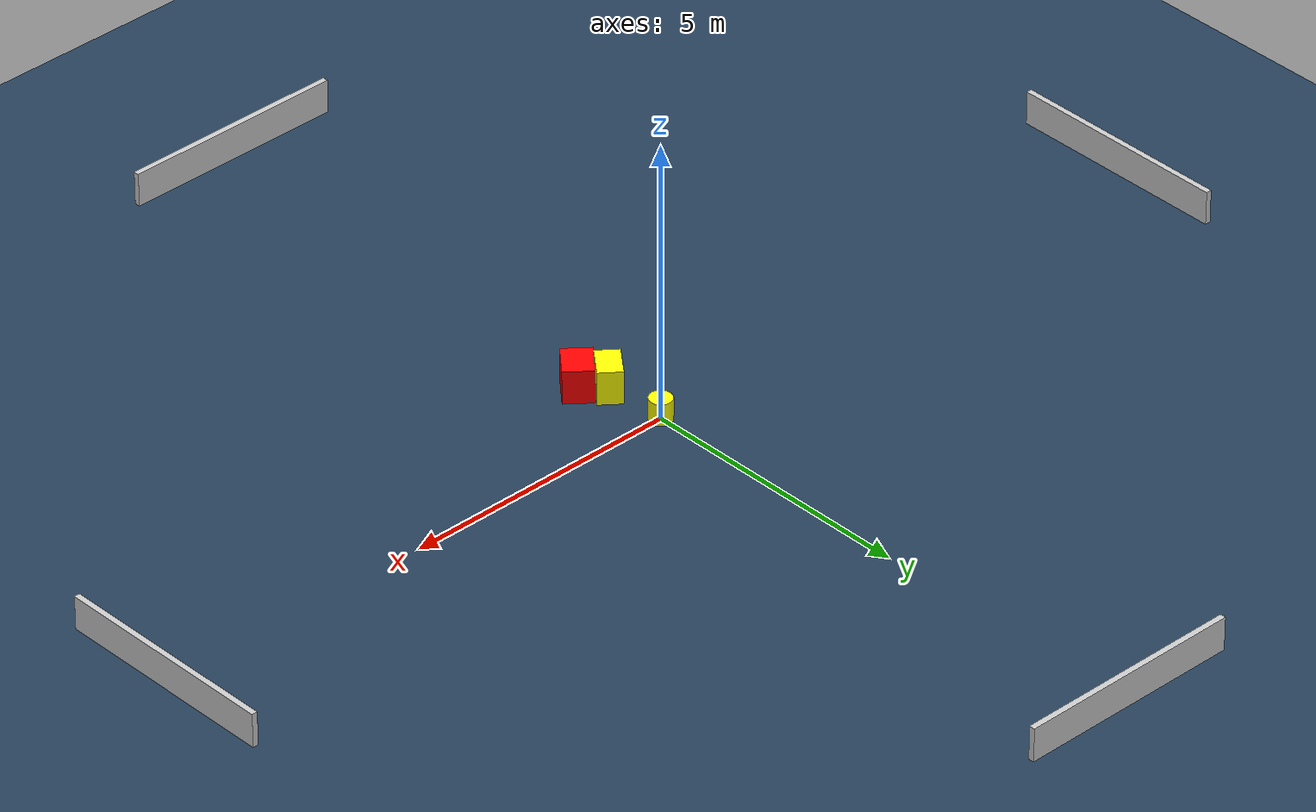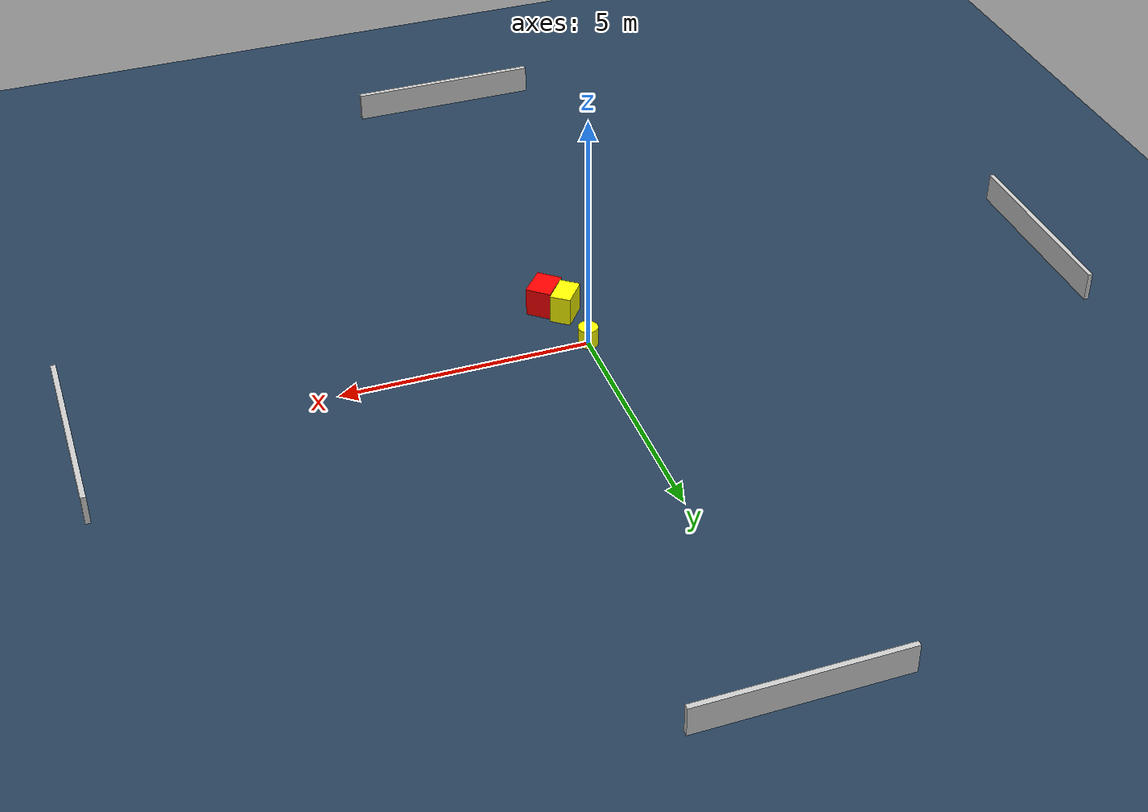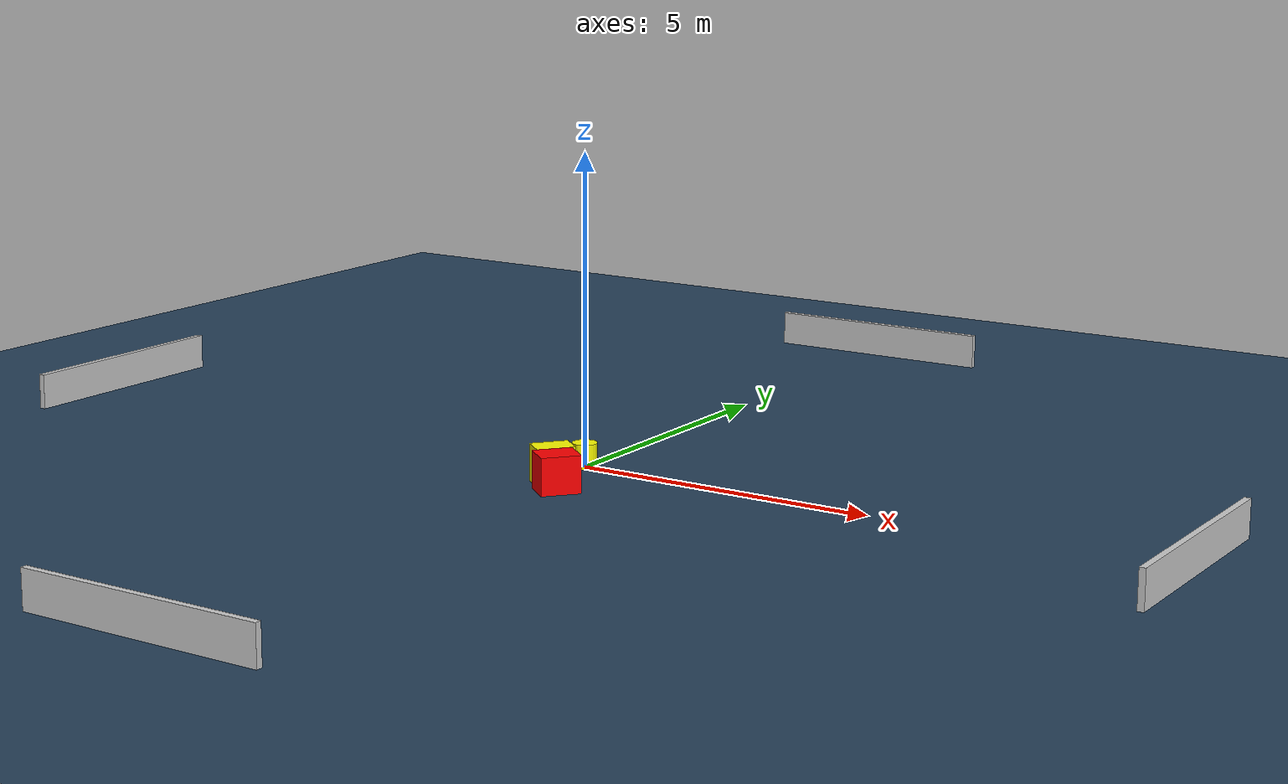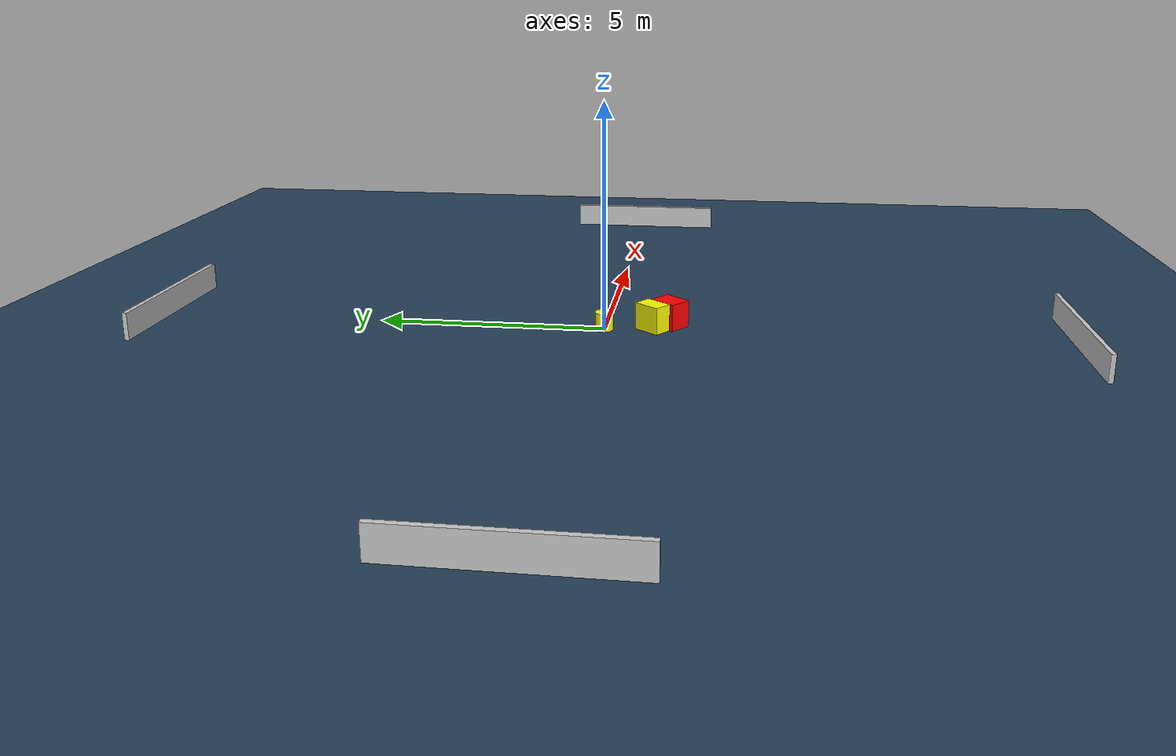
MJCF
<?xml version="1.0" ?>
<mujoco model="generated_environment">
  <option timestep="0.01" integrator="RK4" cone="elliptic"/>
  <default>
    <geom density="1"/>
  </default>
  <asset>
    <texture builtin="gradient" height="3072" name="skybox" rgb1="0.3 0.5 0.7" rgb2="0 0 0" type="skybox" width="512"/>
    <texture builtin="checker" height="300" name="groundplane" rgb1="0.2 0.3 0.4" rgb2="0.1 0.2 0.3" type="2d" width="300"/>
    <material name="groundplane" reflectance="0.2" texrepeat="5 5" texture="groundplane"/>
  </asset>
  <worldbody>
    <light dir="0 0 -1" directional="true" pos="0 0 1.5"/>
    <geom condim="3" friction="0.5 0.005 0.001" material="groundplane" name="floor" pos="0 0 0" size="0 0 0.05" type="plane"/>
    <body name="walls">
      <geom name="wall_1" condim="4" pos="-10.0 0.0 0.3" rgba="0.800000011920929 0.800000011920929 0.800000011920929 1.0" size="0.05 2.0 0.3" type="box"/>
      <geom name="wall_2" condim="4" pos="10.0 0.0 0.3" rgba="0.800000011920929 0.800000011920929 0.800000011920929 1.0" size="0.05 2.0 0.3" type="box"/>
      <geom name="wall_3" condim="4" pos="0.0 -10.0 0.3" rgba="0.800000011920929 0.800000011920929 0.800000011920929 1.0" size="2.0 0.05 0.3" type="box"/>
      <geom name="wall_4" condim="4" pos="0.0 10.0 0.3" rgba="0.800000011920929 0.800000011920929 0.800000011920929 1.0" size="2.0 0.05 0.3" type="box"/>
    </body>
    <body name="robot">
      <joint name="joint_x" type="slide" pos="0 0 0" axis="1 0 0"/>
      <joint name="joint_y" type="slide" pos="0 0 0" axis="0 1 0"/>
      <geom name="robot" type="cylinder" pos="0.0 0.0 0.2" size="0.2 0.2 0.0" mass="5.0" friction="1.0 0.005 0.0001" condim="4" rgba="1.0 1.0 0.0 1.0"/>
    </body>
    <body name="obstacle_1_movable">
      <geom name="obstacle_1_movable" condim="4" pos="0.10689140152525092 -1.0536283455718425 0.3" euler="0 0 231.93035571290378" friction="0.0 0.005 0.001" rgba="1.0 1.0 0.0 1.0" size="0.30992115705025 0.20966196685746677 0.3" type="box" mass="0.1"/>
      <joint type="free"/>
    </body>
    <body name="obstacle_2_static">
      <geom name="obstacle_2_static" condim="4" pos="0.43278736579019217 -1.4116921455003422 0.3" euler="0 0 50.40114239732518" friction="0.0 0.005 0.001" rgba="1.0 0.0 0.0 1.0" size="0.32042822187505315 0.2582130134357206 0.3" type="box"/>
    </body>
  </worldbody>
  <actuator>
    <motor name="actuator_x" joint="joint_x" gear="1" ctrlrange="-1 1"/>
    <motor name="actuator_y" joint="joint_y" gear="1" ctrlrange="-1 1"/>
  </actuator>
</mujoco>
